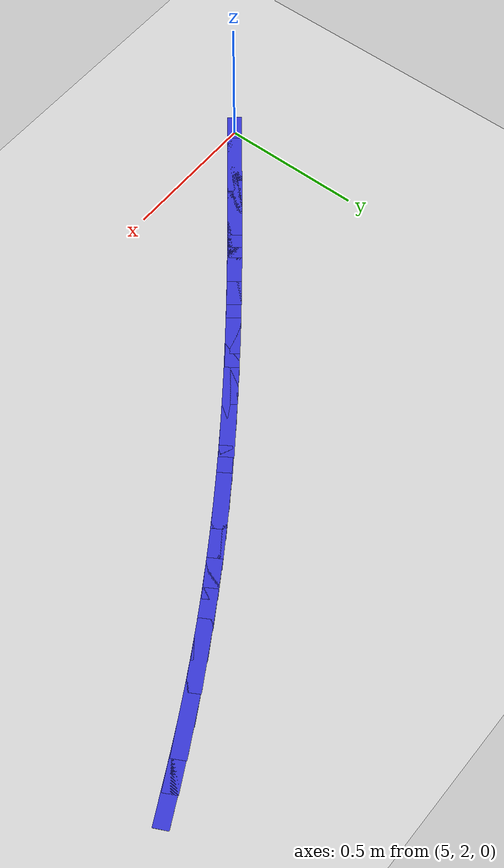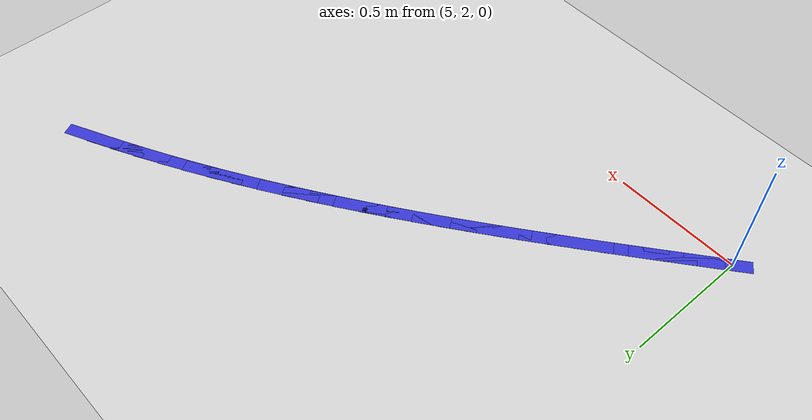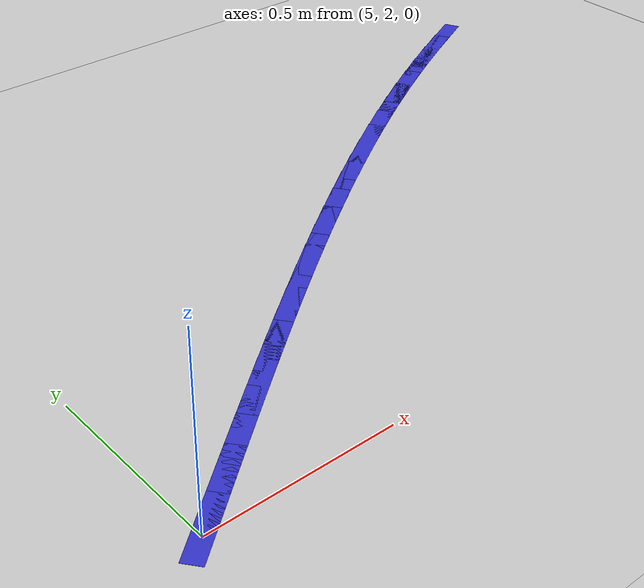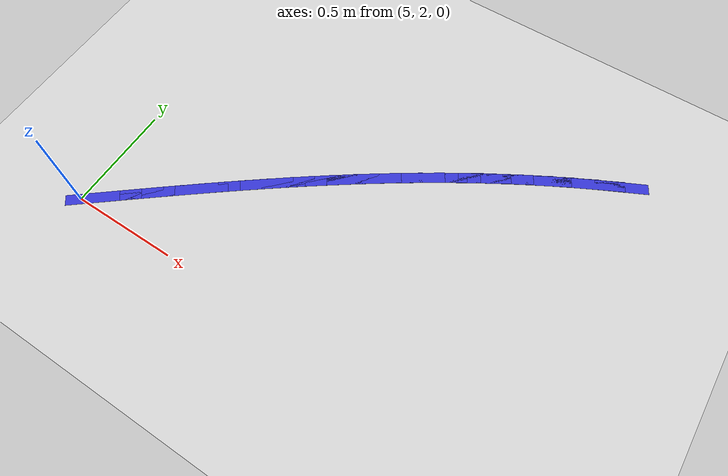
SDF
<sdf version="1.10">
 <world name="empty">
  <model name="ground_plane">
   <static>true</static>
   <link name="link">
    <collision name="collision">
     <geometry><plane><normal>0 0 1</normal><size>100 100</size></plane></geometry>
    </collision>
    <visual name="visual">
     <geometry><plane><normal>0 0 1</normal><size>100 100</size></plane></geometry>
     <material>
      <ambient>0.800000012 0.800000012 0.800000012 1</ambient>
      <diffuse>0.800000012 0.800000012 0.800000012 1</diffuse>
      <specular>0.800000012 0.800000012 0.800000012 1</specular>
     </material>
    </visual>
    <inertial>
     <mass>1</mass>
     <inertia><ixx>1</ixx><ixy>0</ixy><ixz>0</ixz><iyy>1</iyy><iyz>0</iyz><izz>1</izz></inertia>
    </inertial>
   </link>
  </model>
  <model name="unit_box_50">
   <link name="box_link">
    <collision name="box_collision">
     <geometry><box><size>0.000005 0.000005 0.000005</size></box></geometry>
    </collision>
    <visual name="box_visual">
     <geometry><box><size>0.24 0.05 0.0005</size></box></geometry>
     <material>
      <ambient>0.300000012 0.300000012 0.300000012 1</ambient>
      <diffuse>0.2 0.2 0.8 1</diffuse>
      <specular>1 1 1 1</specular>
     </material>
    </visual>
    <pose>5.037880076141478 2.0303019996928784 0 0 0 0.6747077618517449</pose>
   </link>
   <static>false</static>
  </model>
  <model name="unit_box_51">
   <link name="box_link">
    <collision name="box_collision">
     <geometry><box><size>0.000005 0.000005 0.000005</size></box></geometry>
    </collision>
    <visual name="box_visual">
     <geometry><box><size>0.24 0.05 0.0005</size></box></geometry>
     <material>
      <ambient>0.300000012 0.300000012 0.300000012 1</ambient>
      <diffuse>0.2 0.2 0.8 1</diffuse>
      <specular>1 1 1 1</specular>
     </material>
    </visual>
    <pose>5.113671146728998 2.0908812644349837 0 0 0 0.6743096360560793</pose>
   </link>
   <static>false</static>
  </model>
  <model name="unit_box_52">
   <link name="box_link">
    <collision name="box_collision">
     <geometry><box><size>0.000005 0.000005 0.000005</size></box></geometry>
    </collision>
    <visual name="box_visual">
     <geometry><box><size>0.24 0.05 0.0005</size></box></geometry>
     <material>
      <ambient>0.300000012 0.300000012 0.300000012 1</ambient>
      <diffuse>0.2 0.2 0.8 1</diffuse>
      <specular>1 1 1 1</specular>
     </material>
    </visual>
    <pose>5.18955497223021 2.1513863252461363 0 0 0 0.6731156878426151</pose>
   </link>
   <static>false</static>
  </model>
  <model name="unit_box_53">
   <link name="box_link">
    <collision name="box_collision">
     <geometry><box><size>0.000005 0.000005 0.000005</size></box></geometry>
    </collision>
    <visual name="box_visual">
     <geometry><box><size>0.24 0.05 0.0005</size></box></geometry>
     <material>
      <ambient>0.300000012 0.300000012 0.300000012 1</ambient>
      <diffuse>0.2 0.2 0.8 1</diffuse>
      <specular>1 1 1 1</specular>
     </material>
    </visual>
    <pose>5.26559338925424 2.211767712839032 0 0 0 0.6711272111287266</pose>
   </link>
   <static>false</static>
  </model>
  <model name="unit_box_54">
   <link name="box_link">
    <collision name="box_collision">
     <geometry><box><size>0.000005 0.000005 0.000005</size></box></geometry>
    </collision>
    <visual name="box_visual">
     <geometry><box><size>0.24 0.05 0.0005</size></box></geometry>
     <material>
      <ambient>0.300000012 0.300000012 0.300000012 1</ambient>
      <diffuse>0.2 0.2 0.8 1</diffuse>
      <specular>1 1 1 1</specular>
     </material>
    </visual>
    <pose>5.341848234410217 2.271975957926371 0 0 0 0.6683463836569393</pose>
   </link>
   <static>false</static>
  </model>
  <model name="unit_box_55">
   <link name="box_link">
    <collision name="box_collision">
     <geometry><box><size>0.000005 0.000005 0.000005</size></box></geometry>
    </collision>
    <visual name="box_visual">
     <geometry><box><size>0.24 0.05 0.0005</size></box></geometry>
     <material>
      <ambient>0.300000012 0.300000012 0.300000012 1</ambient>
      <diffuse>0.2 0.2 0.8 1</diffuse>
      <specular>1 1 1 1</specular>
     </material>
    </visual>
    <pose>5.418381344307271 2.3319615912208507 0 0 0 0.6647762984325066</pose>
   </link>
   <static>false</static>
  </model>
  <model name="unit_box_56">
   <link name="box_link">
    <collision name="box_collision">
     <geometry><box><size>0.000005 0.000005 0.000005</size></box></geometry>
    </collision>
    <visual name="box_visual">
     <geometry><box><size>0.24 0.05 0.0005</size></box></geometry>
     <material>
      <ambient>0.300000012 0.300000012 0.300000012 1</ambient>
      <diffuse>0.2 0.2 0.8 1</diffuse>
      <specular>1 1 1 1</specular>
     </material>
    </visual>
    <pose>5.495254555554524 2.3916751434351675 0 0 0 0.6604210069645634</pose>
   </link>
   <static>false</static>
  </model>
  <model name="unit_box_57">
   <link name="box_link">
    <collision name="box_collision">
     <geometry><box><size>0.000005 0.000005 0.000005</size></box></geometry>
    </collision>
    <visual name="box_visual">
     <geometry><box><size>0.24 0.05 0.0005</size></box></geometry>
     <material>
      <ambient>0.300000012 0.300000012 0.300000012 1</ambient>
      <diffuse>0.2 0.2 0.8 1</diffuse>
      <specular>1 1 1 1</specular>
     </material>
    </visual>
    <pose>5.572529704761111 2.4510671452820216 0 0 0 0.655285573525024</pose>
   </link>
   <static>false</static>
  </model>
  <model name="unit_box_58">
   <link name="box_link">
    <collision name="box_collision">
     <geometry><box><size>0.000005 0.000005 0.000005</size></box></geometry>
    </collision>
    <visual name="box_visual">
     <geometry><box><size>0.24 0.05 0.0005</size></box></geometry>
     <material>
      <ambient>0.300000012 0.300000012 0.300000012 1</ambient>
      <diffuse>0.2 0.2 0.8 1</diffuse>
      <specular>1 1 1 1</specular>
     </material>
    </visual>
    <pose>5.650268628536152 2.5100881274741087 0 0 0 0.6493761393980872</pose>
   </link>
   <static>false</static>
  </model>
  <model name="unit_box_59">
   <link name="box_link">
    <collision name="box_collision">
     <geometry><box><size>0.000005 0.000005 0.000005</size></box></geometry>
    </collision>
    <visual name="box_visual">
     <geometry><box><size>0.24 0.05 0.0005</size></box></geometry>
     <material>
      <ambient>0.300000012 0.300000012 0.300000012 1</ambient>
      <diffuse>0.2 0.2 0.8 1</diffuse>
      <specular>1 1 1 1</specular>
     </material>
    </visual>
    <pose>5.72853316348878 2.568688620724127 0 0 0 0.6426999958390501</pose>
   </link>
   <static>false</static>
  </model>
  <model name="unit_box_60">
   <link name="box_link">
    <collision name="box_collision">
     <geometry><box><size>0.000005 0.000005 0.000005</size></box></geometry>
    </collision>
    <visual name="box_visual">
     <geometry><box><size>0.24 0.05 0.0005</size></box></geometry>
     <material>
      <ambient>0.300000012 0.300000012 0.300000012 1</ambient>
      <diffuse>0.2 0.2 0.8 1</diffuse>
      <specular>1 1 1 1</specular>
     </material>
    </visual>
    <pose>5.807385146228122 2.6268191557447755 0 0 0 0.6352656642001349</pose>
   </link>
   <static>false</static>
  </model>
  <model name="unit_box_61">
   <link name="box_link">
    <collision name="box_collision">
     <geometry><box><size>0.000005 0.000005 0.000005</size></box></geometry>
    </collision>
    <visual name="box_visual">
     <geometry><box><size>0.24 0.05 0.0005</size></box></geometry>
     <material>
      <ambient>0.300000012 0.300000012 0.300000012 1</ambient>
      <diffuse>0.2 0.2 0.8 1</diffuse>
      <specular>1 1 1 1</specular>
     </material>
    </visual>
    <pose>5.886886413363303 2.684430263248751 0 0 0 0.6270829814099642</pose>
   </link>
   <static>false</static>
  </model>
  <model name="unit_box_62">
   <link name="box_link">
    <collision name="box_collision">
     <geometry><box><size>0.000005 0.000005 0.000005</size></box></geometry>
    </collision>
    <visual name="box_visual">
     <geometry><box><size>0.24 0.05 0.0005</size></box></geometry>
     <material>
      <ambient>0.300000012 0.300000012 0.300000012 1</ambient>
      <diffuse>0.2 0.2 0.8 1</diffuse>
      <specular>1 1 1 1</specular>
     </material>
    </visual>
    <pose>5.967098801503455 2.741472473948752 0 0 0 0.6181631887237437</pose>
   </link>
   <static>false</static>
  </model>
  <model name="unit_box_63">
   <link name="box_link">
    <collision name="box_collision">
     <geometry><box><size>0.000005 0.000005 0.000005</size></box></geometry>
    </collision>
    <visual name="box_visual">
     <geometry><box><size>0.24 0.05 0.0005</size></box></geometry>
     <material>
      <ambient>0.300000012 0.300000012 0.300000012 1</ambient>
      <diffuse>0.2 0.2 0.8 1</diffuse>
      <specular>1 1 1 1</specular>
     </material>
    </visual>
    <pose>6.0480841472577005 2.7978963185574752 0 0 0 0.6085190213940541</pose>
   </link>
   <static>false</static>
  </model>
  <model name="unit_box_64">
   <link name="box_link">
    <collision name="box_collision">
     <geometry><box><size>0.000005 0.000005 0.000005</size></box></geometry>
    </collision>
    <visual name="box_visual">
     <geometry><box><size>0.24 0.05 0.0005</size></box></geometry>
     <material>
      <ambient>0.300000012 0.300000012 0.300000012 1</ambient>
      <diffuse>0.2 0.2 0.8 1</diffuse>
      <specular>1 1 1 1</specular>
     </material>
    </visual>
    <pose>6.129904287235172 2.8536523277876205 0 0 0 0.5981647966613892</pose>
   </link>
   <static>false</static>
  </model>
  <model name="unit_box_65">
   <link name="box_link">
    <collision name="box_collision">
     <geometry><box><size>0.000005 0.000005 0.000005</size></box></geometry>
    </collision>
    <visual name="box_visual">
     <geometry><box><size>0.24 0.05 0.0005</size></box></geometry>
     <material>
      <ambient>0.300000012 0.300000012 0.300000012 1</ambient>
      <diffuse>0.2 0.2 0.8 1</diffuse>
      <specular>1 1 1 1</specular>
     </material>
    </visual>
    <pose>6.212621058044994 2.908691032351883 0 0 0 0.5871164972395597</pose>
   </link>
   <static>false</static>
  </model>
  <model name="unit_box_66">
   <link name="box_link">
    <collision name="box_collision">
     <geometry><box><size>0.000005 0.000005 0.000005</size></box></geometry>
    </collision>
    <visual name="box_visual">
     <geometry><box><size>0.24 0.05 0.0005</size></box></geometry>
     <material>
      <ambient>0.300000012 0.300000012 0.300000012 1</ambient>
      <diffuse>0.2 0.2 0.8 1</diffuse>
      <specular>1 1 1 1</specular>
     </material>
    </visual>
    <pose>6.296296296296296 2.962962962962963 0 0 0 0.5753918472868391</pose>
   </link>
   <static>false</static>
  </model>
  <model name="unit_box_67">
   <link name="box_link">
    <collision name="box_collision">
     <geometry><box><size>0.000005 0.000005 0.000005</size></box></geometry>
    </collision>
    <visual name="box_visual">
     <geometry><box><size>0.24 0.05 0.0005</size></box></geometry>
     <material>
      <ambient>0.300000012 0.300000012 0.300000012 1</ambient>
      <diffuse>0.2 0.2 0.8 1</diffuse>
      <specular>1 1 1 1</specular>
     </material>
    </visual>
    <pose>6.380991838598206 3.016418650333557 0 0 0 0.5630103777263495</pose>
   </link>
   <static>false</static>
  </model>
  <model name="unit_box_68">
   <link name="box_link">
    <collision name="box_collision">
     <geometry><box><size>0.000005 0.000005 0.000005</size></box></geometry>
    </collision>
    <visual name="box_visual">
     <geometry><box><size>0.24 0.05 0.0005</size></box></geometry>
     <material>
      <ambient>0.300000012 0.300000012 0.300000012 1</ambient>
      <diffuse>0.2 0.2 0.8 1</diffuse>
      <specular>1 1 1 1</specular>
     </material>
    </visual>
    <pose>6.466769521559849 3.0690086251763633 0 0 0 0.5499934777234793</pose>
   </link>
   <static>false</static>
  </model>
  <model name="unit_box_69">
   <link name="box_link">
    <collision name="box_collision">
     <geometry><box><size>0.000005 0.000005 0.000005</size></box></geometry>
    </collision>
    <visual name="box_visual">
     <geometry><box><size>0.24 0.05 0.0005</size></box></geometry>
     <material>
      <ambient>0.300000012 0.300000012 0.300000012 1</ambient>
      <diffuse>0.2 0.2 0.8 1</diffuse>
      <specular>1 1 1 1</specular>
     </material>
    </visual>
    <pose>6.553691181790356 3.12068341820408 0 0 0 0.5363644291603262</pose>
   </link>
   <static>false</static>
  </model>
  <model name="unit_box_70">
   <link name="box_link">
    <collision name="box_collision">
     <geometry><box><size>0.000005 0.000005 0.000005</size></box></geometry>
    </collision>
    <visual name="box_visual">
     <geometry><box><size>0.24 0.05 0.0005</size></box></geometry>
     <material>
      <ambient>0.300000012 0.300000012 0.300000012 1</ambient>
      <diffuse>0.2 0.2 0.8 1</diffuse>
      <specular>1 1 1 1</specular>
     </material>
    </visual>
    <pose>6.6418186558988515 3.1713935601294034 0 0 0 0.522148421082416</pose>
   </link>
   <static>false</static>
  </model>
  <model name="unit_box_71">
   <link name="box_link">
    <collision name="box_collision">
     <geometry><box><size>0.000005 0.000005 0.000005</size></box></geometry>
    </collision>
    <visual name="box_visual">
     <geometry><box><size>0.24 0.05 0.0005</size></box></geometry>
     <material>
      <ambient>0.300000012 0.300000012 0.300000012 1</ambient>
      <diffuse>0.2 0.2 0.8 1</diffuse>
      <specular>1 1 1 1</specular>
     </material>
    </visual>
    <pose>6.731213780494466 3.2210895816650327 0 0 0 0.5073725413413137</pose>
   </link>
   <static>false</static>
  </model>
  <model name="unit_box_72">
   <link name="box_link">
    <collision name="box_collision">
     <geometry><box><size>0.000005 0.000005 0.000005</size></box></geometry>
    </collision>
    <visual name="box_visual">
     <geometry><box><size>0.24 0.05 0.0005</size></box></geometry>
     <material>
      <ambient>0.300000012 0.300000012 0.300000012 1</ambient>
      <diffuse>0.2 0.2 0.8 1</diffuse>
      <specular>1 1 1 1</specular>
     </material>
    </visual>
    <pose>6.821938392186326 3.2697220135236664 0 0 0 0.49206574302775835</pose>
   </link>
   <static>false</static>
  </model>
  <model name="unit_box_73">
   <link name="box_link">
    <collision name="box_collision">
     <geometry><box><size>0.000005 0.000005 0.000005</size></box></geometry>
    </collision>
    <visual name="box_visual">
     <geometry><box><size>0.24 0.05 0.0005</size></box></geometry>
     <material>
      <ambient>0.300000012 0.300000012 0.300000012 1</ambient>
      <diffuse>0.2 0.2 0.8 1</diffuse>
      <specular>1 1 1 1</specular>
     </material>
    </visual>
    <pose>6.9140543275835595 3.3172413864180013 0 0 0 0.476258783783159</pose>
   </link>
   <static>false</static>
  </model>
  <model name="unit_box_74">
   <link name="box_link">
    <collision name="box_collision">
     <geometry><box><size>0.000005 0.000005 0.000005</size></box></geometry>
    </collision>
    <visual name="box_visual">
     <geometry><box><size>0.24 0.05 0.0005</size></box></geometry>
     <material>
      <ambient>0.300000012 0.300000012 0.300000012 1</ambient>
      <diffuse>0.2 0.2 0.8 1</diffuse>
      <specular>1 1 1 1</specular>
     </material>
    </visual>
    <pose>7.007623423295294 3.363598231060735 0 0 0 0.45998413668951926</pose>
   </link>
   <static>false</static>
  </model>
 </world>
</sdf>
